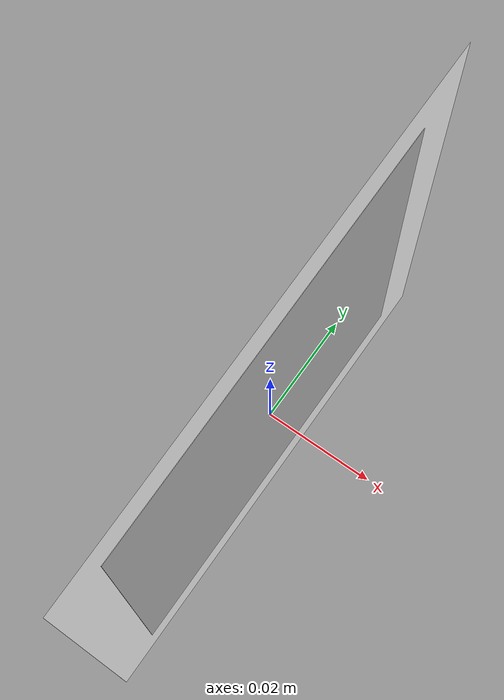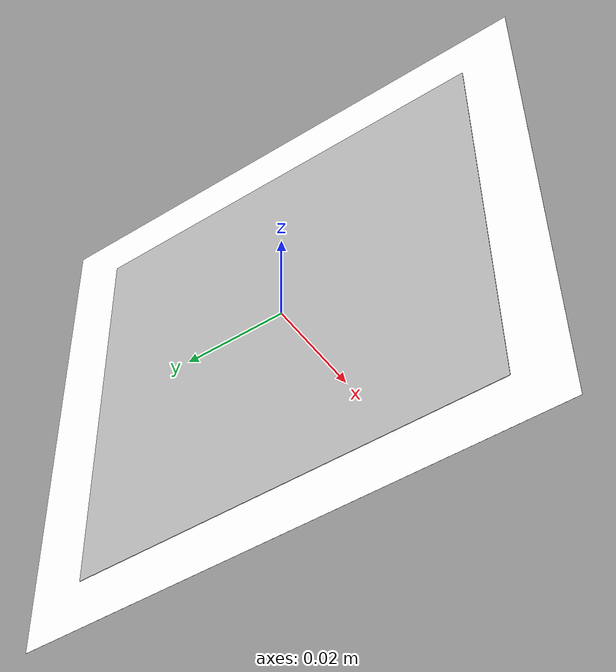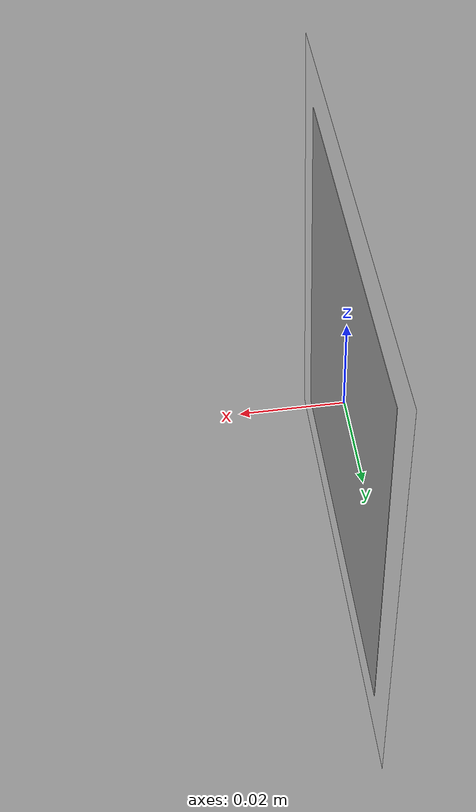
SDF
<sdf version="1.5">
  <model name='Marker_47'>
    <pose frame=''>0 0 0 -3.14 0 -3.14</pose>
    <static>1</static>

    <!-- Link ArUco marker -->
    <link name='marker_link'>
      <collision name='collision'>
        <geometry>
          <mesh>
            <uri>model://aruco_gazebo/marker_47/meshes/47.dae</uri>
          </mesh>
        </geometry>
      </collision>

      <visual name='visual'>
        <cast_shadows>0</cast_shadows>
        <geometry>
          <mesh>
            <uri>model://aruco_gazebo/marker_47/meshes/47.dae</uri>
          </mesh>
        </geometry>
      </visual>

      <self_collide>0</self_collide>
      <enable_wind>0</enable_wind>
      <kinematic>0</kinematic>
    </link>

    <!-- Link White border frame -->
    <link name="white_border_link">
      <pose>-0.00001 0 0 0 0 0</pose>
      <visual name="white_border_visual">
        <geometry>
          <box>
            <size>0.00001 0.1 0.1</size>
          </box>
        </geometry>
        <material>
          <ambient>1 1 1 1</ambient>
          <diffuse>1 1 1 1</diffuse>
          <specular>0.1 0.1 0.1 1</specular>
          <emissive>0 0 0 0</emissive>
        </material>
        <cast_shadows>0</cast_shadows>
      </visual>
      <self_collide>0</self_collide>
      <enable_wind>0</enable_wind>
      <kinematic>0</kinematic>
    </link>

    <!-- Joint fixed เชื่อมสองลิงก์นี้ -->
    <joint name="fix_marker_to_border" type="fixed">
      <parent>marker_link</parent>
      <child>white_border_link</child>
      <pose>0 0 0 0 0 0</pose>
    </joint>

  </model>
</sdf>
